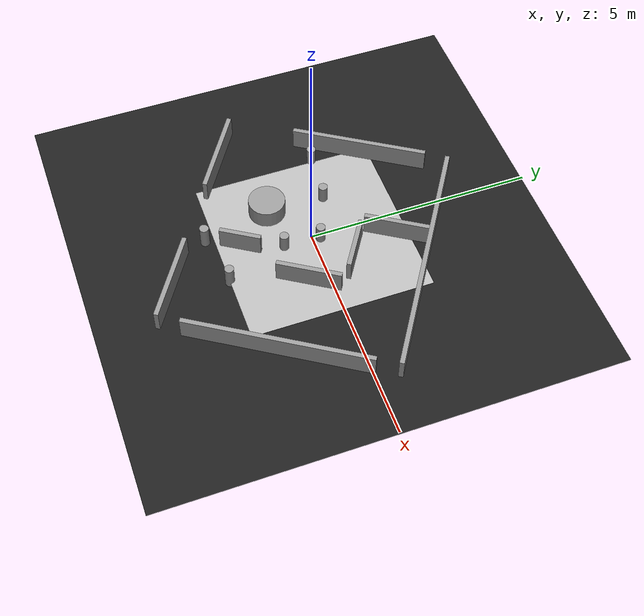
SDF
<sdf version="1.6">
 <world name="default">
  <scene>
   <ambient>0 0 0 1</ambient>
   <shadows>0</shadows>
   <grid>0</grid>
   <background>0.7 0.7 0.7 1</background>
  </scene>
  <include><uri>model://turtlebot3_curvy_road/course</uri><pose>0 0 0 0 0 -1.57</pose></include>
  <include><uri>model://turtlebot3_curvy_road/curvy_road</uri></include>
  <light name="sun" type="directional">
   <pose>0 0 10 0 -0 0</pose>
   <diffuse>0.8 0.8 0.8 1</diffuse>
   <specular>0.1 0.1 0.1 1</specular>
   <attenuation>
    <range>1000</range>
    <constant>0.9</constant>
    <linear>0.01</linear>
    <quadratic>0.001</quadratic>
   </attenuation>
   <direction>-0.5 0.5 -1</direction>
  </light>
  <model name="ground2">
   <pose>0 0 -0.1 0 -0 0</pose>
   <static>1</static>
   <link name="ground">
    <collision name="ground_coll"><geometry><box><size>8 8 0.01</size></box></geometry></collision>
    <visual name="ground_vis">
     <geometry><box><size>10 10 0.01</size></box></geometry>
     <material>
      <script><uri>file://media/materials/scripts/gazebo.material</uri><name>Gazebo/FlatBlack</name></script>
     </material>
    </visual>
   </link>
  </model>
  <gravity>0 0 -9.8</gravity>
  <magnetic_field>6e-06 2.3e-05 -4.2e-05</magnetic_field>
  <atmosphere type="adiabatic"/>
  <physics name="default_physics" default="0" type="ode">
   <max_step_size>0.001</max_step_size>
   <real_time_factor>1</real_time_factor>
   <real_time_update_rate>1000</real_time_update_rate>
  </physics>
  <spherical_coordinates>
   <surface_model>EARTH_WGS84</surface_model>
   <latitude_deg>0</latitude_deg>
   <longitude_deg>0</longitude_deg>
   <elevation>0</elevation>
   <heading_deg>0</heading_deg>
  </spherical_coordinates>
  <light name="user_point_light_7" type="point">
   <pose>0.42  -4.31 1 0 -0 0</pose>
   <diffuse>0.5 0.5 0.5 1</diffuse>
   <specular>0.1 0.1 0.1 1</specular>
   <attenuation>
    <range>20</range>
    <constant>0.6</constant>
    <linear>0.01</linear>
    <quadratic>0.001</quadratic>
   </attenuation>
   <cast_shadows>0</cast_shadows>
   <direction>0 0 -1</direction>
  </light>
  <light name="user_point_light_8" type="point">
   <pose>0.42  4.31 1 0 -0 0</pose>
   <diffuse>0.5 0.5 0.5 1</diffuse>
   <specular>0.1 0.1 0.1 1</specular>
   <attenuation>
    <range>20</range>
    <constant>0.6</constant>
    <linear>0.01</linear>
    <quadratic>0.001</quadratic>
   </attenuation>
   <cast_shadows>0</cast_shadows>
   <direction>0 0 -1</direction>
  </light>
 </world>
</sdf>

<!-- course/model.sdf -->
<sdf version="1.6">
  <model name="course">
    <static>true</static>
    <link name="course_link">
      <collision name="course_collision">
        <geometry>
          <plane>
            <normal>0 0 1</normal>
            <size>4 4</size>
          </plane>
        </geometry>
        <surface>
          <friction>
            <ode>
              <mu>100</mu>
              <mu2>50</mu2>
            </ode>
          </friction>
        </surface>
      </collision>
      <visual name="course_visual">
        <cast_shadows>false</cast_shadows>
        <geometry>
	        <plane>
            <normal>0 0 1</normal>
            <size>4 4</size>
          </plane>
        </geometry>
	      <material>
          <script>
            <uri>model://turtlebot3_curvy_road/course/materials/scripts</uri>
            <uri>model://turtlebot3_curvy_road/course/materials/textures</uri>
            <name>course</name>
          </script>
        </material>
      </visual>
    </link>
  </model>
</sdf>

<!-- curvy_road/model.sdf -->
<sdf version='1.6'>
  <model name='curvy_road'>
    <pose frame=''>0.0 0 0 0 0 1.</pose>
    <link name='Wall_0'>
      <collision name='Wall_0_Collision'>
        <geometry>
          <box>
            <size>0.9 0.1 0.5</size>
          </box>
        </geometry>
        <pose frame=''>0 0 0.25 0 -0 0</pose>
      </collision>
      <visual name='Wall_0_Visual'>
        <pose frame=''>0 0 0.25 0 -0 0</pose>
        <geometry>
          <box>
            <size>0.9 0.1 0.5</size>
          </box>
        </geometry>
        <material>
          <script>
            <uri>file://media/materials/scripts/gazebo.material</uri>
            <name>Gazebo/Grey</name>
          </script>
          <ambient>1 1 1 1</ambient>
        </material>
        <meta>
          <layer>0</layer>
        </meta>
      </visual>
      <pose frame=''>-1.4 -0.62 0 0 -0 0</pose>
    </link>
    <link name='Wall_1_4'>
      <collision name='Wall_1_4_Collision'>
        <geometry>
          <box>
            <size>0.1 2.0 0.5</size>
          </box>
        </geometry>
        <pose frame=''>0 0 0.25 0 -0 0</pose>
      </collision>
      <visual name='Wall_1_4_Visual'>
        <pose frame=''>0 0 0.25 0 -0 0</pose>
        <geometry>
          <box>
            <size>0.1 2.0 0.5</size>
          </box>
        </geometry>
        <material>
          <script>
            <uri>file://media/materials/scripts/gazebo.material</uri>
            <name>Gazebo/Grey</name>
          </script>
          <ambient>1 1 1 1</ambient>
        </material>
        <meta>
          <layer>0</layer>
        </meta>
      </visual>
      <pose frame=''>-2.5 1.5 0 0 0 0</pose>
    </link>
    <link name='Wall_1_5'>
      <collision name='Wall_1_5_Collision'>
        <geometry>
          <box>
            <size>0.1 2.0 0.5</size>
          </box>
        </geometry>
        <pose frame=''>0 0 0.25 0 -0 0</pose>
      </collision>
      <visual name='Wall_1_5_Visual'>
        <pose frame=''>0 0 0.25 0 -0 0</pose>
        <geometry>
          <box>
            <size>0.1 2.0 0.5</size>
          </box>
        </geometry>
        <material>
          <script>
            <uri>file://media/materials/scripts/gazebo.material</uri>
            <name>Gazebo/Grey</name>
          </script>
          <ambient>1 1 1 1</ambient>
        </material>
        <meta>
          <layer>0</layer>
        </meta>
      </visual>
      <pose frame=''>-2.5 -2.0 0 0 0 0</pose>
    </link>
    <link name='Wall_1_6'>
      <collision name='Wall_1_6_Collision'>
        <geometry>
          <box>
            <size>0.1 5.5 0.5</size>
          </box>
        </geometry>
        <pose frame=''>0 0 0.25 0 -0 0</pose>
      </collision>
      <visual name='Wall_1_6_Visual'>
        <pose frame=''>0 0 0.25 0 -0 0</pose>
        <geometry>
          <box>
            <size>0.1 5.5 0.5</size>
          </box>
        </geometry>
        <material>
          <script>
            <uri>file://media/materials/scripts/gazebo.material</uri>
            <name>Gazebo/Grey</name>
          </script>
          <ambient>1 1 1 1</ambient>
        </material>
        <meta>
          <layer>0</layer>
        </meta>
      </visual>
      <pose frame=''>2.5 -0.25 0 0 0 0</pose>
    </link>
    <link name='Wall_1'>
      <collision name='Wall_1_Collision'>
        <geometry>
          <box>
            <size>4 0.1 0.5</size>
          </box>
        </geometry>
        <pose frame=''>0 0 0.25 0 -0 0</pose>
      </collision>
      <visual name='Wall_1_Visual'>
        <pose frame=''>0 0 0.25 0 -0 0</pose>
        <geometry>
          <box>
            <size>4 0.1 0.5</size>
          </box>
        </geometry>
        <material>
          <script>
            <uri>file://media/materials/scripts/gazebo.material</uri>
            <name>Gazebo/Grey</name>
          </script>
          <ambient>1 1 1 1</ambient>
        </material>
        <meta>
          <layer>0</layer>
        </meta>
      </visual>
      <pose frame=''>0 -3. 0 0 -0 0</pose>
    </link>
    <link name='Wall_2'>
      <collision name='Wall_2_Collision'>
        <geometry>
          <box>
            <size>1.0 0.1 0.5</size>
          </box>
        </geometry>
        <pose frame=''>0 0 0.25 0 -0 0</pose>
      </collision>
      <visual name='Wall_2_Visual'>
        <pose frame=''>0 0 0.25 0 -0 0</pose>
        <geometry>
          <box>
            <size>1.4 0.1 0.5</size>
          </box>
        </geometry>
        <material>
          <script>
            <uri>file://media/materials/scripts/gazebo.material</uri>
            <name>Gazebo/Grey</name>
          </script>
          <ambient>1 1 1 1</ambient>
        </material>
        <meta>
          <layer>0</layer>
        </meta>
      </visual>
      <pose frame=''>1.75 0.45 0 0 -0 0</pose>
    </link>
    <link name='Wall_3'>
      <collision name='Wall_2_Collision'>
        <geometry>
          <box>
            <size>3.0 0.1 0.5</size>
          </box>
        </geometry>
        <pose frame=''>0 0 0.25 0 -0 0</pose>
      </collision>
      <visual name='Wall_2_Visual'>
        <pose frame=''>0 0 0.25 0 -0 0</pose>
        <geometry>
          <box>
            <size>3.0 0.1 0.5</size>
          </box>
        </geometry>
        <material>
          <script>
            <uri>file://media/materials/scripts/gazebo.material</uri>
            <name>Gazebo/Grey</name>
          </script>
          <ambient>1 1 1 1</ambient>
        </material>
        <meta>
          <layer>0</layer>
        </meta>
      </visual>
      <pose frame=''>0.5 2.5 0 0 -0 0</pose>
    </link>

    <link name='Wall_4'>
      <collision name='Wall_4_Collision'>
        <geometry>
          <box>
            <size>1.2 0.1 0.5</size>
          </box>
        </geometry>
        <pose frame=''>0 0 0.25 0 -0 0</pose>
      </collision>
      <visual name='Wall_4_Visual'>
        <pose frame=''>0 0 0.25 0 -0 0</pose>
        <geometry>
          <box>
            <size>1.2 0.1 0.5</size>
          </box>
        </geometry>
        <material>
          <script>
            <uri>file://media/materials/scripts/gazebo.material</uri>
            <name>Gazebo/Grey</name>
          </script>
          <ambient>1 1 1 1</ambient>
        </material>
        <meta>
          <layer>0</layer>
        </meta>
      </visual>
      <pose frame=''>1 -0.3 0 0 -0 1.5708</pose>
    </link>

    <link name='Wall_6'>
      <collision name='Wall_6_Collision'>
        <geometry>
          <box>
            <size>1.4 0.1 0.5</size>
          </box>
        </geometry>
        <pose frame=''>0 0 0.25 0 -0 0</pose>
      </collision>
      <visual name='Wall_6_Visual'>
        <pose frame=''>0 0 0.25 0 -0 0</pose>
        <geometry>
          <box>
            <size>1.4 0.1 0.5</size>
          </box>
        </geometry>
        <material>
          <script>
            <uri>file://media/materials/scripts/gazebo.material</uri>
            <name>Gazebo/Grey</name>
          </script>
          <ambient>1 1 1 1</ambient>
        </material>
        <meta>
          <layer>0</layer>
        </meta>
      </visual>
      <pose frame=''>0.22 -1.18 0 0 -0 0</pose>
    </link>

    <link name='Pole_1'>
      <collision name='Pole_1_Collision'>
        <geometry>
            <cylinder>
              <radius>0.1</radius>
              <length>0.5</length>
            </cylinder>
        </geometry>
        <pose frame=''>0 0 0 0 0 0</pose>
      </collision>
      <visual name='Pole_1_Visual'>
        <pose frame=''>0 0 0 0 0 0</pose>
        <geometry>
            <cylinder>
              <radius>0.1</radius>
              <length>0.5</length>
            </cylinder>
        </geometry>
        <material>
          <script>
            <uri>file://media/materials/scripts/gazebo.material</uri>
            <name>Gazebo/Grey</name>
          </script>
          <ambient>1 1 1 1</ambient>
        </material>
        <meta>
          <layer>0</layer>
        </meta>
      </visual>
      <pose frame=''>0 1.1 0.15 0 -0 0</pose>
    </link>

    <link name='Pole_2'>
      <collision name='Pole_2_Collision'>
        <geometry>
            <cylinder>
              <radius>0.1</radius>
              <length>0.5</length>
            </cylinder>
        </geometry>
        <pose frame=''>0 0 0 0 0 0</pose>
      </collision>
      <visual name='Pole_2_Visual'>
        <pose frame=''>0 0 0 0 0 0</pose>
        <geometry>
            <cylinder>
              <radius>0.1</radius>
              <length>0.5</length>
            </cylinder>
        </geometry>
        <material>
          <script>
            <uri>file://media/materials/scripts/gazebo.material</uri>
            <name>Gazebo/Grey</name>
          </script>
          <ambient>1 1 1 1</ambient>
        </material>
        <meta>
          <layer>0</layer>
        </meta>
      </visual>
      <pose frame=''>0.2 0 0.15 0 -0 0</pose>
    </link>

    <link name='Pole_3'>
      <collision name='Pole_3_Collision'>
        <geometry>
            <cylinder>
              <radius>0.1</radius>
              <length>0.5</length>
            </cylinder>
        </geometry>
        <pose frame=''>0 0 0 0 0 0</pose>
      </collision>
      <visual name='Pole_3_Visual'>
        <pose frame=''>0 0 0 0 0 0</pose>
        <geometry>
            <cylinder>
              <radius>0.1</radius>
              <length>0.5</length>
            </cylinder>
        </geometry>
        <material>
          <script>
            <uri>file://media/materials/scripts/gazebo.material</uri>
            <name>Gazebo/Grey</name>
          </script>
          <ambient>1 1 1 1</ambient>
        </material>
        <meta>
          <layer>0</layer>
        </meta>
      </visual>
      <pose frame=''>-1.4 -1.5 0.15 0 -0 0</pose>
    </link>

    <link name='Pole_4'>
      <collision name='Pole_4_Collision'>
        <geometry>
            <cylinder>
              <radius>0.1</radius>
              <length>0.5</length>
            </cylinder>
        </geometry>
        <pose frame=''>0 0 0 0 0 0</pose>
      </collision>
      <visual name='Pole_4_Visual'>
        <pose frame=''>0 0 0 0 0 0</pose>
        <geometry>
            <cylinder>
              <radius>0.1</radius>
              <length>0.5</length>
            </cylinder>
        </geometry>
        <material>
          <script>
            <uri>file://media/materials/scripts/gazebo.material</uri>
            <name>Gazebo/Grey</name>
          </script>
          <ambient>1 1 1 1</ambient>
        </material>
        <meta>
          <layer>0</layer>
        </meta>
      </visual>
      <pose frame=''>-2.2 -0.6 0.15 0 0 -0 0</pose>
    </link>

    <link name='Pole_5'>
      <collision name='Pole_5_Collision'>
        <geometry>
            <cylinder>
              <radius>0.1</radius>
              <length>0.5</length>
            </cylinder>
        </geometry>
        <pose frame=''>0 0 0 0 0 0</pose>
      </collision>
      <visual name='Pole_5_Visual'>
        <pose frame=''>0 0 0 0 0 0</pose>
        <geometry>
            <cylinder>
              <radius>0.1</radius>
              <length>0.5</length>
            </cylinder>
        </geometry>
        <material>
          <script>
            <uri>file://media/materials/scripts/gazebo.material</uri>
            <name>Gazebo/Grey</name>
          </script>
          <ambient>1 1 1 1</ambient>
        </material>
        <meta>
          <layer>0</layer>
        </meta>
      </visual>
      <pose frame=''>-0.5 -0.4 0.15 0 0 -0 0</pose>
    </link>

    <link name='Pole_6'>
      <collision name='Pole_6_Collision'>
        <geometry>
            <cylinder>
              <radius>0.4</radius>
              <length>0.5</length>
            </cylinder>
        </geometry>
        <pose frame=''>0 0 0 0 0 0</pose>
      </collision>
      <visual name='Pole_6_Visual'>
        <pose frame=''>0 0 0 0 0 0</pose>
        <geometry>
            <cylinder>
              <radius>0.4</radius>
              <length>0.5</length>
            </cylinder>
        </geometry>
        <material>
          <script>
            <uri>file://media/materials/scripts/gazebo.material</uri>
            <name>Gazebo/Grey</name>
          </script>
          <ambient>1 1 1 1</ambient>
        </material>
        <meta>
          <layer>0</layer>
        </meta>
      </visual>
      <pose frame=''>-1.1 0.45 0.15 0 0 -0 0</pose>
    </link>

    <link name='Pole_7'>
      <collision name='Pole_7_Collision'>
        <geometry>
            <cylinder>
              <radius>0.1</radius>
              <length>0.5</length>
            </cylinder>
        </geometry>
        <pose frame=''>0 0 0 0 0 0</pose>
      </collision>
      <visual name='Pole_7_Visual'>
        <pose frame=''>0 0 0 0 0 0</pose>
        <geometry>
            <cylinder>
              <radius>0.1</radius>
              <length>0.5</length>
            </cylinder>
        </geometry>
        <material>
          <script>
            <uri>file://media/materials/scripts/gazebo.material</uri>
            <name>Gazebo/Grey</name>
          </script>
          <ambient>1 1 1 1</ambient>
        </material>
        <meta>
          <layer>0</layer>
        </meta>
      </visual>
      <pose frame=''>-0.5 2.1 0.15 0 0 -0 0</pose>
    </link>

    <static>1</static>
  </model>
</sdf>
